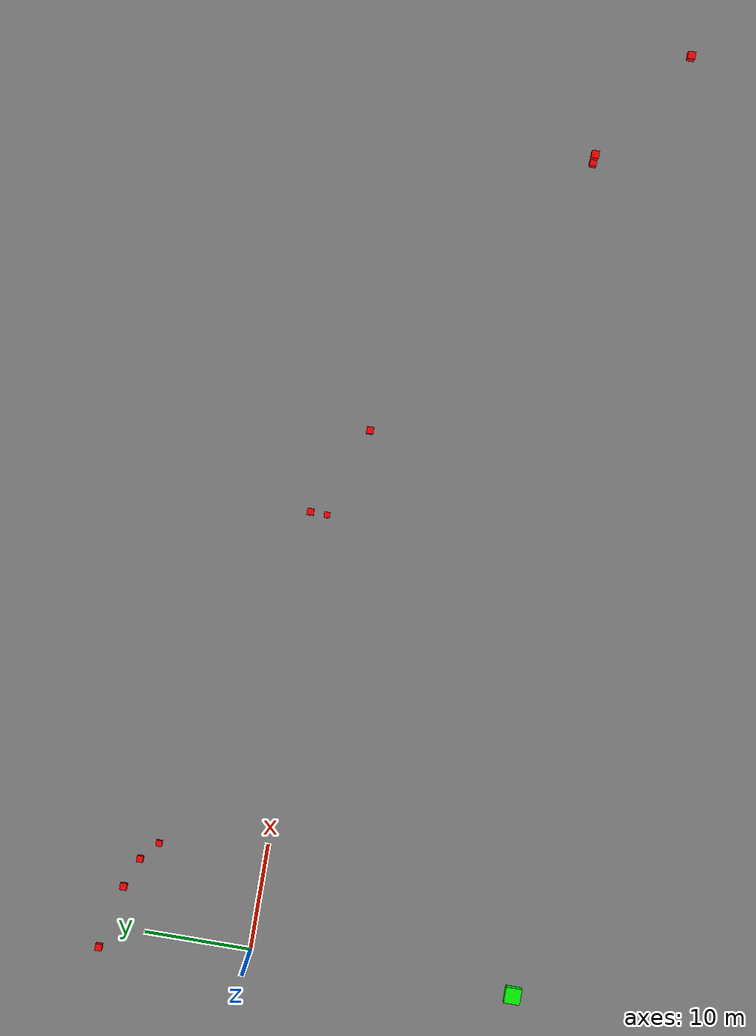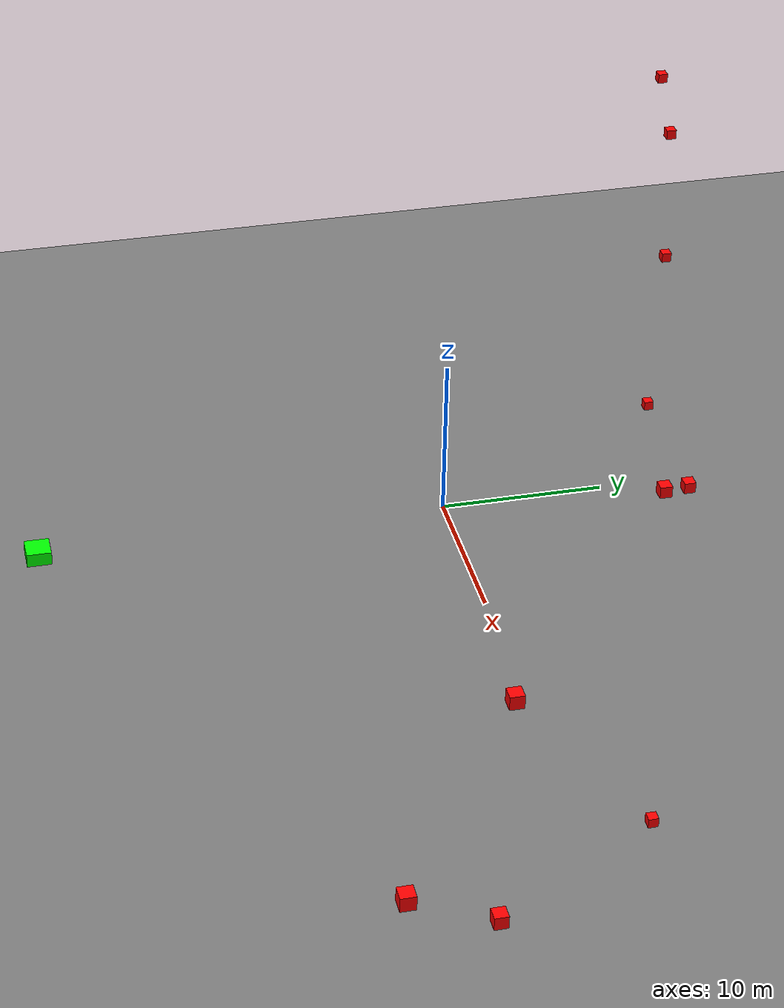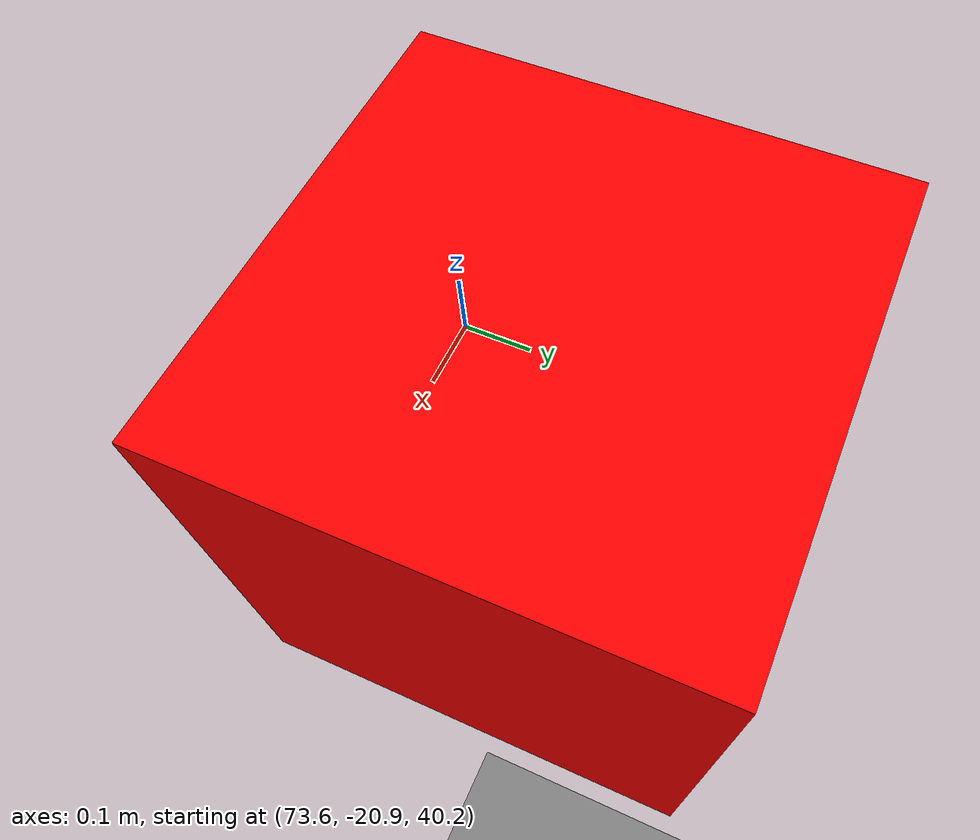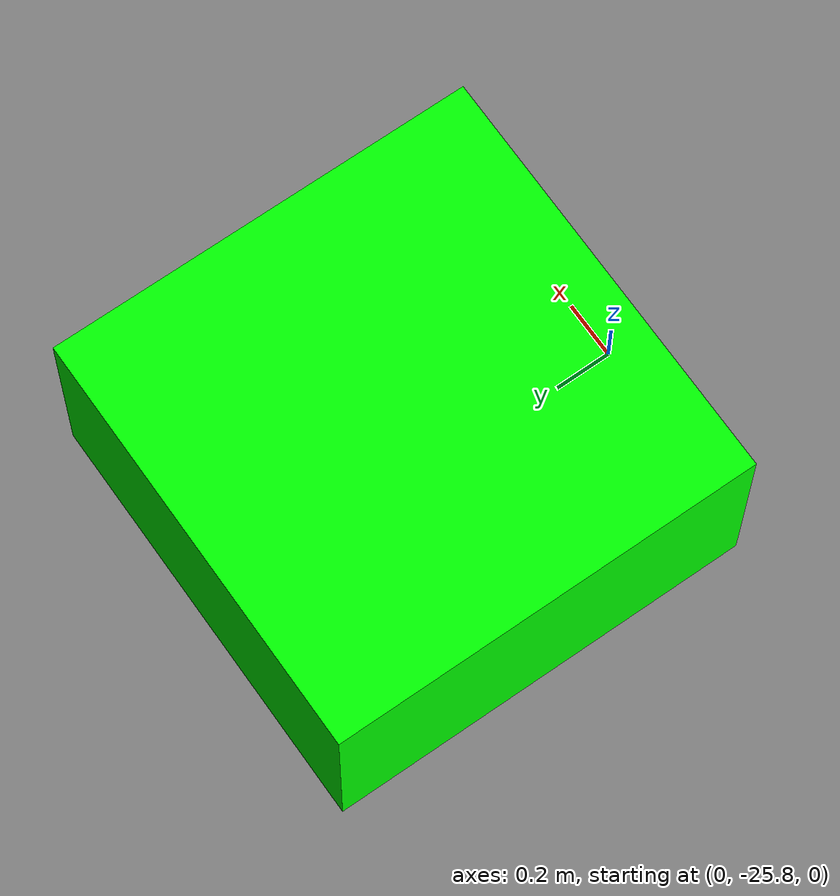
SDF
<sdf version="1.8">
 <world name="mbs_10_poi">
  <gravity>0 0 -9.8</gravity>
  <light name="sun" type="directional">
   <pose>0 0 10 0 -0 0</pose>
   <diffuse>0.8 0.8 0.8 1</diffuse>
   <specular>0.1 0.1 0.1 1</specular>
   <attenuation>
    <range>1000</range>
    <constant>0.9</constant>
    <linear>0.01</linear>
    <quadratic>0.001</quadratic>
   </attenuation>
   <direction>-0.5 0.5 -1</direction>
  </light>
  <model name="ground_plane">
   <static>true</static>
   <link name="link">
    <collision name="collision">
     <geometry><plane><normal>0 0 1</normal><size>2000 2000</size></plane></geometry>
     <surface><friction><ode><mu>100</mu><mu2>50</mu2></ode></friction></surface>
    </collision>
    <visual name="visual">
     <cast_shadows>false</cast_shadows>
     <geometry><plane><normal>0 0 1</normal><size>2000 2000</size></plane></geometry>
     <material>
      <ambient>0.5 0.5 0.5 1</ambient>
      <diffuse>0.5 0.5 0.5 1</diffuse>
      <specular>0.1 0.1 0.1 1</specular>
     </material>
    </visual>
   </link>
  </model>
  <model name="gcs">
   <pose>0 -25 0 0.0 0.0 0.0</pose>
   <static>true</static>
   <link name="link">
    <collision name="collision">
     <geometry><box><size>1.5 1.5 1.5</size></box></geometry>
     <surface><friction><ode><mu>0.8</mu><mu2>0.8</mu2></ode></friction></surface>
    </collision>
    <visual name="visual">
     <geometry><box><size>1.5 1.5 1.5</size></box></geometry>
     <material>
      <ambient>0.0 1.0 0.0 1.0</ambient>
      <diffuse>0.0 1.0 0.0 1.0</diffuse>
      <specular>0.0 0.2 0.0 1.0</specular>
     </material>
    </visual>
   </link>
  </model>
  <model name="poi_0000">
   <pose>40.96 -0.64 10.59 0.0 0.0 0.0</pose>
   <static>true</static>
   <link name="link">
    <visual name="visual">
     <geometry><box><size>0.5 0.5 0.5</size></box></geometry>
     <material>
      <ambient>1.0 0.0 0.0 1.0</ambient>
      <diffuse>1.0 0.0 0.0 1.0</diffuse>
      <specular>0.2 0.0 0.0 1.0</specular>
     </material>
    </visual>
   </link>
  </model>
  <model name="poi_0001">
   <pose>39.98 0.02 28.63 0.0 0.0 0.0</pose>
   <static>true</static>
   <link name="link">
    <visual name="visual">
     <geometry><box><size>0.5 0.5 0.5</size></box></geometry>
     <material>
      <ambient>1.0 0.0 0.0 1.0</ambient>
      <diffuse>1.0 0.0 0.0 1.0</diffuse>
      <specular>0.2 0.0 0.0 1.0</specular>
     </material>
    </visual>
   </link>
  </model>
  <model name="poi_0002">
   <pose>46.22 -3.44 33.15 0.0 0.0 0.0</pose>
   <static>true</static>
   <link name="link">
    <visual name="visual">
     <geometry><box><size>0.5 0.5 0.5</size></box></geometry>
     <material>
      <ambient>1.0 0.0 0.0 1.0</ambient>
      <diffuse>1.0 0.0 0.0 1.0</diffuse>
      <specular>0.2 0.0 0.0 1.0</specular>
     </material>
    </visual>
   </link>
  </model>
  <model name="poi_0003">
   <pose>10.11 9.04 29.68 0.0 0.0 0.0</pose>
   <static>true</static>
   <link name="link">
    <visual name="visual">
     <geometry><box><size>0.5 0.5 0.5</size></box></geometry>
     <material>
      <ambient>1.0 0.0 0.0 1.0</ambient>
      <diffuse>1.0 0.0 0.0 1.0</diffuse>
      <specular>0.2 0.0 0.0 1.0</specular>
     </material>
    </visual>
   </link>
  </model>
  <model name="poi_0004">
   <pose>11.05 8.97 22.80 0.0 0.0 0.0</pose>
   <static>true</static>
   <link name="link">
    <visual name="visual">
     <geometry><box><size>0.5 0.5 0.5</size></box></geometry>
     <material>
      <ambient>1.0 0.0 0.0 1.0</ambient>
      <diffuse>1.0 0.0 0.0 1.0</diffuse>
      <specular>0.2 0.0 0.0 1.0</specular>
     </material>
    </visual>
   </link>
  </model>
  <model name="poi_0005">
   <pose>10.81 8.72 13.20 0.0 0.0 0.0</pose>
   <static>true</static>
   <link name="link">
    <visual name="visual">
     <geometry><box><size>0.5 0.5 0.5</size></box></geometry>
     <material>
      <ambient>1.0 0.0 0.0 1.0</ambient>
      <diffuse>1.0 0.0 0.0 1.0</diffuse>
      <specular>0.2 0.0 0.0 1.0</specular>
     </material>
    </visual>
   </link>
  </model>
  <model name="poi_0006">
   <pose>5.62 9.97 30.73 0.0 0.0 0.0</pose>
   <static>true</static>
   <link name="link">
    <visual name="visual">
     <geometry><box><size>0.5 0.5 0.5</size></box></geometry>
     <material>
      <ambient>1.0 0.0 0.0 1.0</ambient>
      <diffuse>1.0 0.0 0.0 1.0</diffuse>
      <specular>0.2 0.0 0.0 1.0</specular>
     </material>
    </visual>
   </link>
  </model>
  <model name="poi_0007">
   <pose>66.15 -15.37 40.56 0.0 0.0 0.0</pose>
   <static>true</static>
   <link name="link">
    <visual name="visual">
     <geometry><box><size>0.5 0.5 0.5</size></box></geometry>
     <material>
      <ambient>1.0 0.0 0.0 1.0</ambient>
      <diffuse>1.0 0.0 0.0 1.0</diffuse>
      <specular>0.2 0.0 0.0 1.0</specular>
     </material>
    </visual>
   </link>
  </model>
  <model name="poi_0008">
   <pose>67.94 -16.08 33.13 0.0 0.0 0.0</pose>
   <static>true</static>
   <link name="link">
    <visual name="visual">
     <geometry><box><size>0.5 0.5 0.5</size></box></geometry>
     <material>
      <ambient>1.0 0.0 0.0 1.0</ambient>
      <diffuse>1.0 0.0 0.0 1.0</diffuse>
      <specular>0.2 0.0 0.0 1.0</specular>
     </material>
    </visual>
   </link>
  </model>
  <model name="poi_0009">
   <pose>73.84 -20.66 40.42 0.0 0.0 0.0</pose>
   <static>true</static>
   <link name="link">
    <visual name="visual">
     <geometry><box><size>0.5 0.5 0.5</size></box></geometry>
     <material>
      <ambient>1.0 0.0 0.0 1.0</ambient>
      <diffuse>1.0 0.0 0.0 1.0</diffuse>
      <specular>0.2 0.0 0.0 1.0</specular>
     </material>
    </visual>
   </link>
  </model>
  <physics name="default_physics" default="true" type="ode">
   <max_step_size>0.002</max_step_size>
   <real_time_factor>1.0</real_time_factor>
   <real_time_update_rate>500</real_time_update_rate>
  </physics>
  <scene><ambient>0.4 0.4 0.4 1</ambient><background>0.7 0.7 0.7 1</background><shadows>true</shadows></scene>
  <spherical_coordinates>
   <surface_model>EARTH_WGS84</surface_model>
   <latitude_deg>0</latitude_deg>
   <longitude_deg>0</longitude_deg>
   <elevation>0</elevation>
   <heading_deg>0</heading_deg>
  </spherical_coordinates>
 </world>
</sdf>
